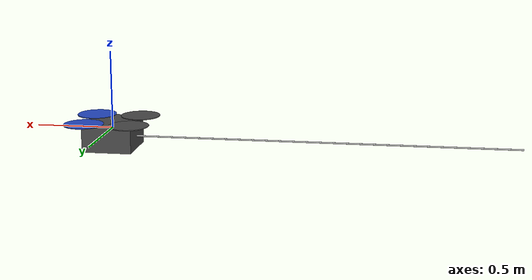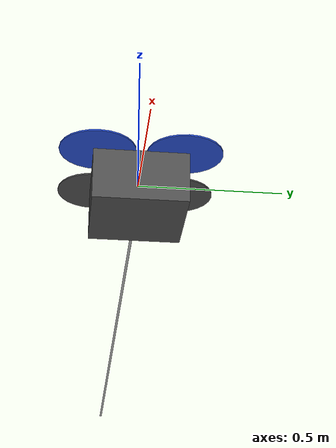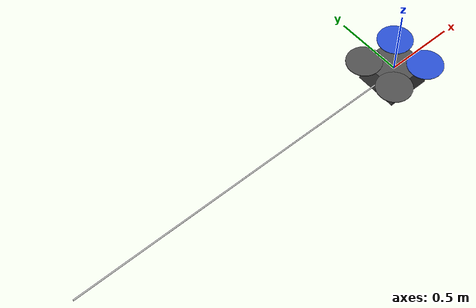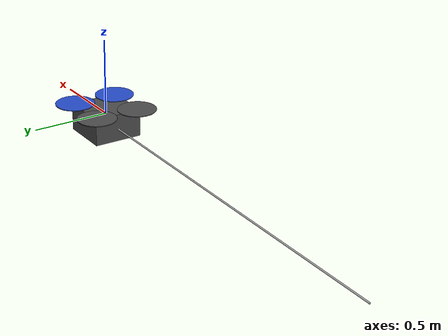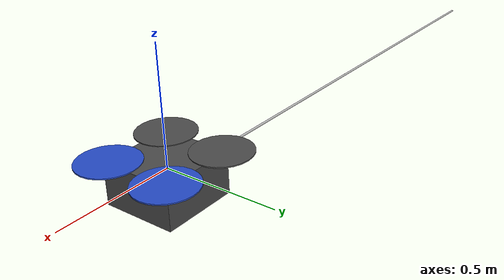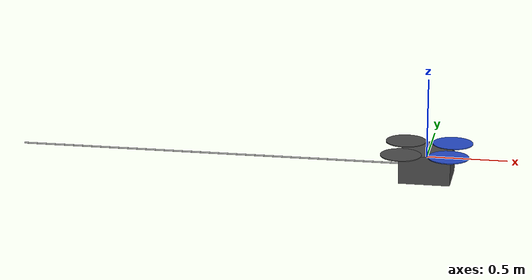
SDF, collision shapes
<?xml version="1.0" ?>
<sdf version="1.5">
  <model name="solo">

    <!-- Quad model -->
    <include>
      <uri>model://solo_base</uri>
      <pose>0 0 0 0 0 0</pose>
    </include>

    <!-- DeLeaves -->
    <include>
      <uri>model://deleaves_clamp</uri>
      <pose>0 0 0 0 0 0</pose>
    </include>

    <!-- Attach DeLeaves to quad -->
    <joint name="deleaves_joint" type="universal">
      <parent>solo_base::base_link</parent>
      <child>deleaves_clamp::link</child>
      <pose>0 0 -0.1 0 0 0</pose>
      <axis>
        <xyz>1 0 0</xyz>
      </axis>
      <axis2>
        <xyz>0 1 0</xyz>
      </axis2>
    </joint>

  </model>
</sdf>

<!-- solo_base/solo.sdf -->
<sdf version='1.5'>
  <model name='solo_base'>
    <!-- Solo body -->
    <link name='base_link'>
      <pose>0 0 0 0 0 0</pose>
      <inertial>
        <pose>0 0 0 0 0 0</pose>
        <mass>1.47</mass>
        <inertia>
          <ixx>0.011</ixx>
          <ixy>0</ixy>
          <ixz>0</ixz>
          <iyy>0.015</iyy>
          <iyz>0</iyz>
          <izz>0.021</izz>
        </inertia>
      </inertial>
      <collision name='base_link_inertia_collision'>
        <pose>0 0 -0.04 0 0 0</pose>
        <geometry>
          <box>
            <size>0.32 0.32 0.18</size>
          </box>
        </geometry>
        <surface>
          <contact>
            <ode>
              <min_depth>0.001</min_depth>
              <max_vel>0</max_vel>
            </ode>
          </contact>
          <friction>
            <ode/>
          </friction>
        </surface>
      </collision>
      <visual name='base_link_inertia_visual'>
        <pose>0 0 0 0 0 0</pose>
        <geometry>
          <mesh>
            <scale>1 1 1</scale>
            <uri>model://solo/meshes/solo.stl</uri>
          </mesh>
        </geometry>
        <material>
          <script>
            <name>Gazebo/DarkGrey</name>
            <uri>file://media/materials/scripts/gazebo.material</uri>
          </script>
        </material>
      </visual>
      <gravity>1</gravity>
      <velocity_decay/>
      <self_collide>0</self_collide>
    </link>
    <link name='imu_link'>
      <pose>0 0 0 0 0 0</pose>
      <inertial>
        <pose>0 0 0 0 0 0</pose>
        <mass>0.015</mass>
        <inertia>
          <ixx>1e-05</ixx>
          <ixy>0</ixy>
          <ixz>0</ixz>
          <iyy>1e-05</iyy>
          <iyz>0</iyz>
          <izz>1e-05</izz>
        </inertia>
      </inertial>
    </link>
    <joint name='imu_joint' type='revolute'>
      <child>imu_link</child>
      <parent>base_link</parent>
      <axis>
        <xyz>1 0 0</xyz>
        <limit>
          <lower>0</lower>
          <upper>0</upper>
          <effort>0</effort>
          <velocity>0</velocity>
        </limit>
        <dynamics>
          <spring_reference>0</spring_reference>
          <spring_stiffness>0</spring_stiffness>
        </dynamics>
        <use_parent_model_frame>1</use_parent_model_frame>
      </axis>
    </joint>
    <link name='rotor_0'>
      <pose>0.14745 -0.14525 0.051 0 0 0</pose>
      <inertial>
        <pose>0 0 0 0 0 0</pose>
        <mass>0.005</mass>
        <inertia>
          <ixx>9.75e-07</ixx>
          <ixy>0</ixy>
          <ixz>0</ixz>
          <iyy>0.000273104</iyy>
          <iyz>0</iyz>
          <izz>0.000274004</izz>
        </inertia>
      </inertial>
      <collision name='rotor_0_collision'>
        <pose>0 0 0 0 0 0</pose>
        <geometry>
          <cylinder>
            <length>0.005</length>
            <radius>0.128</radius>
          </cylinder>
        </geometry>
        <surface>
          <contact>
            <ode/>
          </contact>
          <friction>
            <ode/>
          </friction>
        </surface>
      </collision>
      <visual name='rotor_0_visual'>
        <pose>-0.14745 -0.14525 -0.051 0 0 0</pose>
        <geometry>
          <mesh>
            <scale>1 1 1</scale>
            <uri>model://solo/meshes/solo_prop_ccw.stl</uri>
          </mesh>
        </geometry>
        <material>
          <script>
            <name>Gazebo/Blue</name>
            <uri>file://media/materials/scripts/gazebo.material</uri>
          </script>
        </material>
      </visual>
      <gravity>1</gravity>
      <velocity_decay/>
      <self_collide>0</self_collide>
    </link>
    <joint name='rotor_0_joint' type='revolute'>
      <child>rotor_0</child>
      <parent>base_link</parent>
      <axis>
        <xyz>0 0 1</xyz>
        <limit>
          <lower>-1e+16</lower>
          <upper>1e+16</upper>
        </limit>
        <dynamics>
          <spring_reference>0</spring_reference>
          <spring_stiffness>0</spring_stiffness>
        </dynamics>
        <use_parent_model_frame>1</use_parent_model_frame>
      </axis>
    </joint>
    <link name='rotor_1'>
      <pose>-0.14745 0.14525 0.051 0 0 0</pose>
      <inertial>
        <pose>0 0 0 0 0 0</pose>
        <mass>0.005</mass>
        <inertia>
          <ixx>9.75e-07</ixx>
          <ixy>0</ixy>
          <ixz>0</ixz>
          <iyy>0.000273104</iyy>
          <iyz>0</iyz>
          <izz>0.000274004</izz>
        </inertia>
      </inertial>
      <collision name='rotor_1_collision'>
        <pose>0 0 0 0 0 0</pose>
        <geometry>
          <cylinder>
            <length>0.005</length>
            <radius>0.128</radius>
          </cylinder>
        </geometry>
        <surface>
          <contact>
            <ode/>
          </contact>
          <friction>
            <ode/>
          </friction>
        </surface>
      </collision>
      <visual name='rotor_1_visual'>
        <pose>-0.14745 -0.14525 -0.051 0 0 0</pose>
        <geometry>
          <mesh>
            <scale>1 1 1</scale>
            <uri>model://solo/meshes/solo_prop_ccw.stl</uri>
          </mesh>
        </geometry>
        <material>
          <script>
            <name>Gazebo/DarkGrey</name>
            <uri>file://media/materials/scripts/gazebo.material</uri>
          </script>
        </material>
      </visual>
      <gravity>1</gravity>
      <velocity_decay/>
      <self_collide>0</self_collide>
    </link>
    <joint name='rotor_1_joint' type='revolute'>
      <child>rotor_1</child>
      <parent>base_link</parent>
      <axis>
        <xyz>0 0 1</xyz>
        <limit>
          <lower>-1e+16</lower>
          <upper>1e+16</upper>
        </limit>
        <dynamics>
          <spring_reference>0</spring_reference>
          <spring_stiffness>0</spring_stiffness>
        </dynamics>
        <use_parent_model_frame>1</use_parent_model_frame>
      </axis>
    </joint>
    <link name='rotor_2'>
      <pose>0.14745 0.14525 0.051 0 0 0</pose>
      <inertial>
        <pose>0 0 0 0 0 0</pose>
        <mass>0.005</mass>
        <inertia>
          <ixx>9.75e-07</ixx>
          <ixy>0</ixy>
          <ixz>0</ixz>
          <iyy>0.000273104</iyy>
          <iyz>0</iyz>
          <izz>0.000274004</izz>
        </inertia>
      </inertial>
      <collision name='rotor_2_collision'>
        <pose>0 0 0 0 0 0</pose>
        <geometry>
          <cylinder>
            <length>0.005</length>
            <radius>0.128</radius>
          </cylinder>
        </geometry>
        <surface>
          <contact>
            <ode/>
          </contact>
          <friction>
            <ode/>
          </friction>
        </surface>
      </collision>
      <visual name='rotor_2_visual'>
        <pose>-0.14745 0.14525 -0.051 0 0 0</pose>
        <geometry>
          <mesh>
            <scale>1 1 1</scale>
            <uri>model://solo/meshes/solo_prop_cw.stl</uri>
          </mesh>
        </geometry>
        <material>
          <script>
            <name>Gazebo/Blue</name>
            <uri>file://media/materials/scripts/gazebo.material</uri>
          </script>
        </material>
      </visual>
      <gravity>1</gravity>
      <velocity_decay/>
      <self_collide>0</self_collide>
    </link>
    <joint name='rotor_2_joint' type='revolute'>
      <child>rotor_2</child>
      <parent>base_link</parent>
      <axis>
        <xyz>0 0 1</xyz>
        <limit>
          <lower>-1e+16</lower>
          <upper>1e+16</upper>
        </limit>
        <dynamics>
          <spring_reference>0</spring_reference>
          <spring_stiffness>0</spring_stiffness>
        </dynamics>
        <use_parent_model_frame>1</use_parent_model_frame>
      </axis>
    </joint>
    <link name='rotor_3'>
      <pose>-0.14745 -0.14525 0.051 0 0 0</pose>
      <inertial>
        <pose>0 0 0 0 0 0</pose>
        <mass>0.005</mass>
        <inertia>
          <ixx>9.75e-07</ixx>
          <ixy>0</ixy>
          <ixz>0</ixz>
          <iyy>0.000273104</iyy>
          <iyz>0</iyz>
          <izz>0.000274004</izz>
        </inertia>
      </inertial>
      <collision name='rotor_3_collision'>
        <pose>0 0 0 0 0 0</pose>
        <geometry>
          <cylinder>
            <length>0.005</length>
            <radius>0.128</radius>
          </cylinder>
        </geometry>
        <surface>
          <contact>
            <ode/>
          </contact>
          <friction>
            <ode/>
          </friction>
        </surface>
      </collision>
      <visual name='rotor_3_visual'>
        <pose>-0.14745 0.14525 -0.051 0 0 0</pose>
        <geometry>
          <mesh>
            <scale>1 1 1</scale>
            <uri>model://solo/meshes/solo_prop_cw.stl</uri>
          </mesh>
        </geometry>
        <material>
          <script>
            <name>Gazebo/DarkGrey</name>
            <uri>file://media/materials/scripts/gazebo.material</uri>
          </script>
        </material>
      </visual>
      <gravity>1</gravity>
      <velocity_decay/>
      <self_collide>0</self_collide>
    </link>
    <joint name='rotor_3_joint' type='revolute'>
      <child>rotor_3</child>
      <parent>base_link</parent>
      <axis>
        <xyz>0 0 1</xyz>
        <limit>
          <lower>-1e+16</lower>
          <upper>1e+16</upper>
        </limit>
        <dynamics>
          <spring_reference>0</spring_reference>
          <spring_stiffness>0</spring_stiffness>
        </dynamics>
        <use_parent_model_frame>1</use_parent_model_frame>
      </axis>
    </joint>
    <plugin name='rosbag' filename='libgazebo_multirotor_base_plugin.so'>
      <robotNamespace></robotNamespace>
      <linkName>base_link</linkName>
      <rotorVelocitySlowdownSim>10</rotorVelocitySlowdownSim>
    </plugin>
    <plugin name='front_right_motor_model' filename='libgazebo_motor_model.so'>
      <robotNamespace></robotNamespace>
      <jointName>rotor_0_joint</jointName>
      <linkName>rotor_0</linkName>
      <turningDirection>ccw</turningDirection>
      <timeConstantUp>0.0125</timeConstantUp>
      <timeConstantDown>0.025</timeConstantDown>
      <maxRotVelocity>1500</maxRotVelocity>
      <motorConstant>8.54858e-06</motorConstant>
      <momentConstant>0.06</momentConstant>
      <commandSubTopic>/gazebo/command/motor_speed</commandSubTopic>
      <motorNumber>0</motorNumber>
      <rotorDragCoefficient>0.000806428</rotorDragCoefficient>
      <rollingMomentCoefficient>1e-06</rollingMomentCoefficient>
      <motorSpeedPubTopic>/motor_speed/0</motorSpeedPubTopic>
      <rotorVelocitySlowdownSim>10</rotorVelocitySlowdownSim>
    </plugin>
    <plugin name='back_left_motor_model' filename='libgazebo_motor_model.so'>
      <robotNamespace></robotNamespace>
      <jointName>rotor_1_joint</jointName>
      <linkName>rotor_1</linkName>
      <turningDirection>ccw</turningDirection>
      <timeConstantUp>0.0125</timeConstantUp>
      <timeConstantDown>0.025</timeConstantDown>
      <maxRotVelocity>1500</maxRotVelocity>
      <motorConstant>8.54858e-06</motorConstant>
      <momentConstant>0.06</momentConstant>
      <commandSubTopic>/gazebo/command/motor_speed</commandSubTopic>
      <motorNumber>1</motorNumber>
      <rotorDragCoefficient>0.000806428</rotorDragCoefficient>
      <rollingMomentCoefficient>1e-06</rollingMomentCoefficient>
      <motorSpeedPubTopic>/motor_speed/1</motorSpeedPubTopic>
      <rotorVelocitySlowdownSim>10</rotorVelocitySlowdownSim>
    </plugin>
    <plugin name='front_left_motor_model' filename='libgazebo_motor_model.so'>
      <robotNamespace></robotNamespace>
      <jointName>rotor_2_joint</jointName>
      <linkName>rotor_2</linkName>
      <turningDirection>cw</turningDirection>
      <timeConstantUp>0.0125</timeConstantUp>
      <timeConstantDown>0.025</timeConstantDown>
      <maxRotVelocity>1500</maxRotVelocity>
      <motorConstant>8.54858e-06</motorConstant>
      <momentConstant>0.06</momentConstant>
      <commandSubTopic>/gazebo/command/motor_speed</commandSubTopic>
      <motorNumber>2</motorNumber>
      <rotorDragCoefficient>0.000806428</rotorDragCoefficient>
      <rollingMomentCoefficient>1e-06</rollingMomentCoefficient>
      <motorSpeedPubTopic>/motor_speed/2</motorSpeedPubTopic>
      <rotorVelocitySlowdownSim>10</rotorVelocitySlowdownSim>
    </plugin>
    <plugin name='back_right_motor_model' filename='libgazebo_motor_model.so'>
      <robotNamespace></robotNamespace>
      <jointName>rotor_3_joint</jointName>
      <linkName>rotor_3</linkName>
      <turningDirection>cw</turningDirection>
      <timeConstantUp>0.0125</timeConstantUp>
      <timeConstantDown>0.025</timeConstantDown>
      <maxRotVelocity>1500</maxRotVelocity>
      <motorConstant>8.54858e-06</motorConstant>
      <momentConstant>0.06</momentConstant>
      <commandSubTopic>/gazebo/command/motor_speed</commandSubTopic>
      <motorNumber>3</motorNumber>
      <rotorDragCoefficient>0.000806428</rotorDragCoefficient>
      <rollingMomentCoefficient>1e-06</rollingMomentCoefficient>
      <motorSpeedPubTopic>/motor_speed/3</motorSpeedPubTopic>
      <rotorVelocitySlowdownSim>10</rotorVelocitySlowdownSim>
    </plugin>
    <plugin name="gps_plugin" filename="libgazebo_gps_plugin.so">
        <robotNamespace></robotNamespace>
        <gpsNoise>false</gpsNoise>
    </plugin>
        <plugin name='mavlink_interface' filename='libgazebo_mavlink_interface.so'>
      <robotNamespace/>
      <imuSubTopic>/imu</imuSubTopic>
      <gpsSubTopic>/gps</gpsSubTopic>
      <mavlink_addr>INADDR_ANY</mavlink_addr>
      <mavlink_udp_port>14560</mavlink_udp_port>
      <serialEnabled>false</serialEnabled>
      <serialDevice>/dev/ttyACM0</serialDevice>
      <baudRate>921600</baudRate>
      <qgc_addr>INADDR_ANY</qgc_addr>
      <qgc_udp_port>14550</qgc_udp_port>
      <hil_mode>false</hil_mode>
      <hil_state_level>false</hil_state_level>
      <motorSpeedCommandPubTopic>/gazebo/command/motor_speed</motorSpeedCommandPubTopic>
      <control_channels>
        <channel name='rotor1'>
          <input_index>0</input_index>
          <input_offset>0</input_offset>
          <input_scaling>1200</input_scaling>
          <zero_position_disarmed>0</zero_position_disarmed>
          <zero_position_armed>100</zero_position_armed>
          <joint_control_type>velocity</joint_control_type>
        </channel>
        <channel name='rotor2'>
          <input_index>1</input_index>
          <input_offset>0</input_offset>
          <input_scaling>1200</input_scaling>
          <zero_position_disarmed>0</zero_position_disarmed>
          <zero_position_armed>100</zero_position_armed>
          <joint_control_type>velocity</joint_control_type>
        </channel>
        <channel name='rotor3'>
          <input_index>2</input_index>
          <input_offset>0</input_offset>
          <input_scaling>1200</input_scaling>
          <zero_position_disarmed>0</zero_position_disarmed>
          <zero_position_armed>100</zero_position_armed>
          <joint_control_type>velocity</joint_control_type>
        </channel>
        <channel name='rotor4'>
          <input_index>3</input_index>
          <input_offset>0</input_offset>
          <input_scaling>1200</input_scaling>
          <zero_position_disarmed>0</zero_position_disarmed>
          <zero_position_armed>100</zero_position_armed>
          <joint_control_type>velocity</joint_control_type>
        </channel>
      </control_channels>
    </plugin>
    <static>0</static>
    <plugin name='gazebo_imu_plugin' filename='libgazebo_imu_plugin.so'>
      <robotNamespace></robotNamespace>
      <linkName>imu_link</linkName>
      <imuTopic>/imu</imuTopic>
      <gyroscopeNoiseDensity>0.0003394</gyroscopeNoiseDensity>
      <gyroscopeRandomWalk>3.8785e-05</gyroscopeRandomWalk>
      <gyroscopeBiasCorrelationTime>1000.0</gyroscopeBiasCorrelationTime>
      <gyroscopeTurnOnBiasSigma>0.0087</gyroscopeTurnOnBiasSigma>
      <accelerometerNoiseDensity>0.004</accelerometerNoiseDensity>
      <accelerometerRandomWalk>0.006</accelerometerRandomWalk>
      <accelerometerBiasCorrelationTime>300.0</accelerometerBiasCorrelationTime>
      <accelerometerTurnOnBiasSigma>0.196</accelerometerTurnOnBiasSigma>
    </plugin>
  </model>
</sdf>

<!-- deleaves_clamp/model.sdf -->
<sdf version="1.5">
  <model name="deleaves_clamp">
    <pose>0 0 0 0 0 0</pose>
    <static>false</static>
    <link name="link">
      <inertial>
        <mass>0.535</mass>
        <inertia>
          <ixx>0.000265</ixx>
          <ixy>0</ixy>
          <ixz>0</ixz>
          <iyy>0.257</iyy>
          <iyz>0</iyz>
          <izz>0.257</izz>
        </inertia>
	<pose>-1.3 0 -0.05 0 0 0</pose>
      </inertial>

      <collision name="collision">
        <geometry>
          <cylinder>
              <radius>0.005</radius>
              <length>2.6</length>
          </cylinder>
        </geometry>
	<surface>
          <contact>
            <ode>
              <max_vel>0.1</max_vel>
              <min_depth>0.001</min_depth>
            </ode>
          </contact>
        </surface>
        <pose>-1.3 0 -0.05 0 1.5708 0</pose>
      </collision>

      <visual name="visual">
        <pose>-1.3 -0.1 -0.05 0 1.5708 0</pose>
        <geometry>
          <mesh>
            <uri>model://deleaves_clamp/meshes/deleaves.obj</uri>
            <scale>1 1 1</scale>
          </mesh>

	</geometry>
      </visual>
    </link>

  </model>
</sdf>
